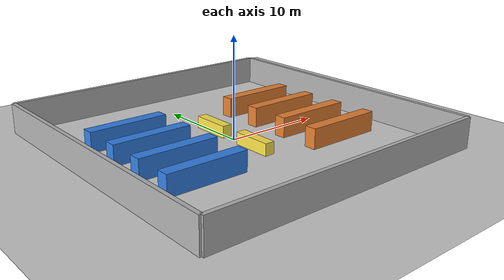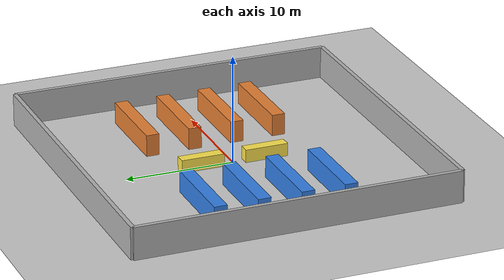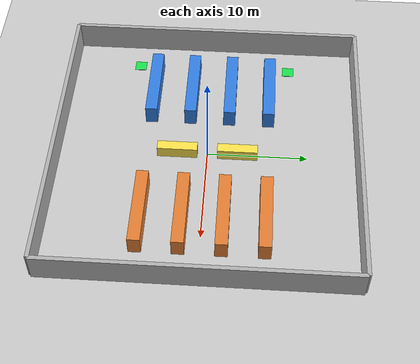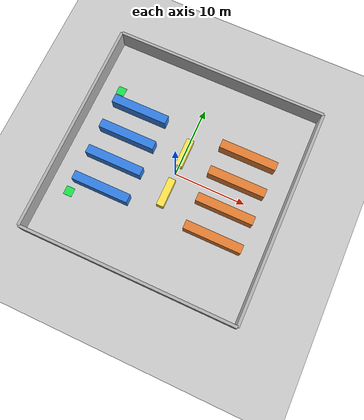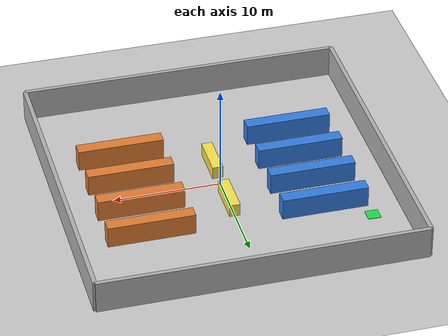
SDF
<?xml version="1.0" ?>
<sdf version="1.6">
  <world name="warehouse_world">
    <!-- Physics parameters -->
    <physics type="ode">
      <max_step_size>0.002</max_step_size>
      <real_time_factor>1.0</real_time_factor>
      <real_time_update_rate>500</real_time_update_rate>
      <ode>
        <solver>
          <type>quick</type>
          <iters>50</iters>
          <sor>1.3</sor>
        </solver>
        <constraints>
          <cfm>0.0</cfm>
          <erp>0.2</erp>
          <contact_max_correcting_vel>100.0</contact_max_correcting_vel>
          <contact_surface_layer>0.001</contact_surface_layer>
        </constraints>
      </ode>
    </physics>

    <!-- Lighting -->
    <include>
      <uri>model://sun</uri>
    </include>

    <!-- Floor Ground Plane -->
    <include>
      <uri>model://ground_plane</uri>
    </include>

    <!-- Warehouse Outer Perimeter Walls -->
    <model name="warehouse_outer_walls">
      <static>true</static>
      <!-- North Wall -->
      <link name="north_wall">
        <pose>0 15 1.5 0 0 0</pose>
        <collision name="collision">
          <geometry><box><size>30 0.4 3</size></box></geometry>
        </collision>
        <visual name="visual">
          <geometry><box><size>30 0.4 3</size></box></geometry>
          <material><ambient>0.6 0.6 0.6 1</ambient><diffuse>0.7 0.7 0.7 1</diffuse></material>
        </visual>
      </link>
      <!-- South Wall -->
      <link name="south_wall">
        <pose>0 -15 1.5 0 0 0</pose>
        <collision name="collision">
          <geometry><box><size>30 0.4 3</size></box></geometry>
        </collision>
        <visual name="visual">
          <geometry><box><size>30 0.4 3</size></box></geometry>
          <material><ambient>0.6 0.6 0.6 1</ambient><diffuse>0.7 0.7 0.7 1</diffuse></material>
        </visual>
      </link>
      <!-- East Wall -->
      <link name="east_wall">
        <pose>15 0 1.5 0 0 0</pose>
        <collision name="collision">
          <geometry><box><size>0.4 30 3</size></box></geometry>
        </collision>
        <visual name="visual">
          <geometry><box><size>0.4 30 3</size></box></geometry>
          <material><ambient>0.6 0.6 0.6 1</ambient><diffuse>0.7 0.7 0.7 1</diffuse></material>
        </visual>
      </link>
      <!-- West Wall -->
      <link name="west_wall">
        <pose>-15 0 1.5 0 0 0</pose>
        <collision name="collision">
          <geometry><box><size>0.4 30 3</size></box></geometry>
        </collision>
        <visual name="visual">
          <geometry><box><size>0.4 30 3</size></box></geometry>
          <material><ambient>0.6 0.6 0.6 1</ambient><diffuse>0.7 0.7 0.7 1</diffuse></material>
        </visual>
      </link>
    </model>

    <!-- Storage Racks - Aisle Set 1 (West) -->
    <model name="rack_row_1">
      <static>true</static>
      <pose>-8 6 1.0 0 0 0</pose>
      <link name="link">
        <collision name="c"><geometry><box><size>8 1.2 2.0</size></box></geometry></collision>
        <visual name="v">
          <geometry><box><size>8 1.2 2.0</size></box></geometry>
          <material><ambient>0.2 0.4 0.8 1</ambient><diffuse>0.2 0.5 0.9 1</diffuse></material>
        </visual>
      </link>
    </model>

    <model name="rack_row_2">
      <static>true</static>
      <pose>-8 2 1.0 0 0 0</pose>
      <link name="link">
        <collision name="c"><geometry><box><size>8 1.2 2.0</size></box></geometry></collision>
        <visual name="v">
          <geometry><box><size>8 1.2 2.0</size></box></geometry>
          <material><ambient>0.2 0.4 0.8 1</ambient><diffuse>0.2 0.5 0.9 1</diffuse></material>
        </visual>
      </link>
    </model>

    <model name="rack_row_3">
      <static>true</static>
      <pose>-8 -2 1.0 0 0 0</pose>
      <link name="link">
        <collision name="c"><geometry><box><size>8 1.2 2.0</size></box></geometry></collision>
        <visual name="v">
          <geometry><box><size>8 1.2 2.0</size></box></geometry>
          <material><ambient>0.2 0.4 0.8 1</ambient><diffuse>0.2 0.5 0.9 1</diffuse></material>
        </visual>
      </link>
    </model>

    <model name="rack_row_4">
      <static>true</static>
      <pose>-8 -6 1.0 0 0 0</pose>
      <link name="link">
        <collision name="c"><geometry><box><size>8 1.2 2.0</size></box></geometry></collision>
        <visual name="v">
          <geometry><box><size>8 1.2 2.0</size></box></geometry>
          <material><ambient>0.2 0.4 0.8 1</ambient><diffuse>0.2 0.5 0.9 1</diffuse></material>
        </visual>
      </link>
    </model>

    <!-- Storage Racks - Aisle Set 2 (East) -->
    <model name="rack_row_5">
      <static>true</static>
      <pose>8 6 1.0 0 0 0</pose>
      <link name="link">
        <collision name="c"><geometry><box><size>8 1.2 2.0</size></box></geometry></collision>
        <visual name="v">
          <geometry><box><size>8 1.2 2.0</size></box></geometry>
          <material><ambient>0.8 0.4 0.2 1</ambient><diffuse>0.9 0.5 0.2 1</diffuse></material>
        </visual>
      </link>
    </model>

    <model name="rack_row_6">
      <static>true</static>
      <pose>8 2 1.0 0 0 0</pose>
      <link name="link">
        <collision name="c"><geometry><box><size>8 1.2 2.0</size></box></geometry></collision>
        <visual name="v">
          <geometry><box><size>8 1.2 2.0</size></box></geometry>
          <material><ambient>0.8 0.4 0.2 1</ambient><diffuse>0.9 0.5 0.2 1</diffuse></material>
        </visual>
      </link>
    </model>

    <model name="rack_row_7">
      <static>true</static>
      <pose>8 -2 1.0 0 0 0</pose>
      <link name="link">
        <collision name="c"><geometry><box><size>8 1.2 2.0</size></box></geometry></collision>
        <visual name="v">
          <geometry><box><size>8 1.2 2.0</size></box></geometry>
          <material><ambient>0.8 0.4 0.2 1</ambient><diffuse>0.9 0.5 0.2 1</diffuse></material>
        </visual>
      </link>
    </model>

    <model name="rack_row_8">
      <static>true</static>
      <pose>8 -6 1.0 0 0 0</pose>
      <link name="link">
        <collision name="c"><geometry><box><size>8 1.2 2.0</size></box></geometry></collision>
        <visual name="v">
          <geometry><box><size>8 1.2 2.0</size></box></geometry>
          <material><ambient>0.8 0.4 0.2 1</ambient><diffuse>0.9 0.5 0.2 1</diffuse></material>
        </visual>
      </link>
    </model>

    <!-- Narrow Center Bottleneck / Choke Point Barrier -->
    <model name="choke_barrier_north">
      <static>true</static>
      <pose>0 3 0.6 0 0 0</pose>
      <link name="link">
        <collision name="c"><geometry><box><size>1.0 4.0 1.2</size></box></geometry></collision>
        <visual name="v">
          <geometry><box><size>1.0 4.0 1.2</size></box></geometry>
          <material><ambient>0.9 0.9 0.2 1</ambient><diffuse>1.0 0.9 0.3 1</diffuse></material>
        </visual>
      </link>
    </model>

    <model name="choke_barrier_south">
      <static>true</static>
      <pose>0 -3 0.6 0 0 0</pose>
      <link name="link">
        <collision name="c"><geometry><box><size>1.0 4.0 1.2</size></box></geometry></collision>
        <visual name="v">
          <geometry><box><size>1.0 4.0 1.2</size></box></geometry>
          <material><ambient>0.9 0.9 0.2 1</ambient><diffuse>1.0 0.9 0.3 1</diffuse></material>
        </visual>
      </link>
    </model>

    <!-- Charging Station Markers -->
    <model name="dock_station_nw">
      <static>true</static>
      <pose>-12 8 0.02 0 0 0</pose>
      <link name="link">
        <visual name="v">
          <geometry><box><size>1.2 1.2 0.04</size></box></geometry>
          <material><ambient>0.1 0.8 0.2 1</ambient><diffuse>0.1 0.9 0.3 1</diffuse></material>
        </visual>
      </link>
    </model>

    <model name="dock_station_sw">
      <static>true</static>
      <pose>-12 -8 0.02 0 0 0</pose>
      <link name="link">
        <visual name="v">
          <geometry><box><size>1.2 1.2 0.04</size></box></geometry>
          <material><ambient>0.1 0.8 0.2 1</ambient><diffuse>0.1 0.9 0.3 1</diffuse></material>
        </visual>
      </link>
    </model>

    <gui fullscreen='0'>
      <camera name='user_camera'>
        <pose>0 -18 20 0 0.85 1.57</pose>
        <view_controller>orbit</view_controller>
      </camera>
    </gui>
  </world>
</sdf>
